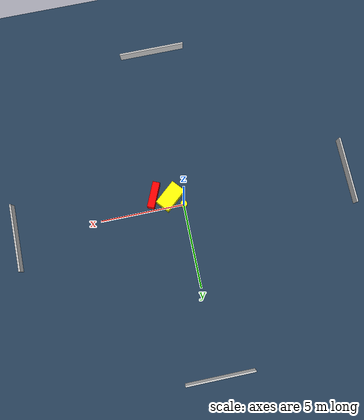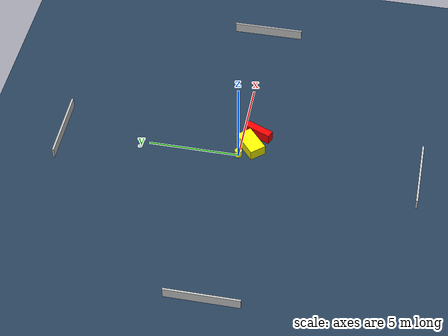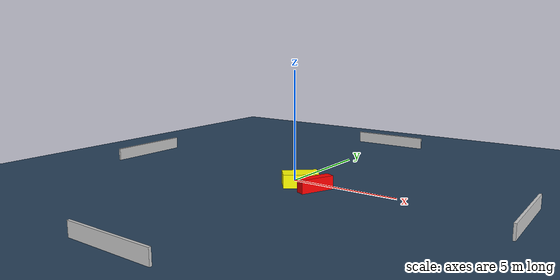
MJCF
<?xml version="1.0" ?>
<mujoco model="generated_environment">
  <option timestep="0.01" integrator="RK4" cone="elliptic"/>
  <default>
    <geom density="1"/>
  </default>
  <asset>
    <texture builtin="gradient" height="3072" name="skybox" rgb1="0.3 0.5 0.7" rgb2="0 0 0" type="skybox" width="512"/>
    <texture builtin="checker" height="300" name="groundplane" rgb1="0.2 0.3 0.4" rgb2="0.1 0.2 0.3" type="2d" width="300"/>
    <material name="groundplane" reflectance="0.2" texrepeat="5 5" texture="groundplane"/>
  </asset>
  <worldbody>
    <light dir="0 0 -1" directional="true" pos="0 0 1.5"/>
    <geom condim="3" friction="0.5 0.005 0.001" material="groundplane" name="floor" pos="0 0 0" size="0 0 0.05" type="plane"/>
    <body name="walls">
      <geom name="wall_1" condim="4" pos="-10.0 0.0 0.3" rgba="0.800000011920929 0.800000011920929 0.800000011920929 1.0" size="0.05 2.0 0.3" type="box"/>
      <geom name="wall_2" condim="4" pos="10.0 0.0 0.3" rgba="0.800000011920929 0.800000011920929 0.800000011920929 1.0" size="0.05 2.0 0.3" type="box"/>
      <geom name="wall_3" condim="4" pos="0.0 -10.0 0.3" rgba="0.800000011920929 0.800000011920929 0.800000011920929 1.0" size="2.0 0.05 0.3" type="box"/>
      <geom name="wall_4" condim="4" pos="0.0 10.0 0.3" rgba="0.800000011920929 0.800000011920929 0.800000011920929 1.0" size="2.0 0.05 0.3" type="box"/>
    </body>
    <body name="robot">
      <joint name="joint_x" type="slide" pos="0 0 0" axis="1 0 0"/>
      <joint name="joint_y" type="slide" pos="0 0 0" axis="0 1 0"/>
      <geom name="robot" type="cylinder" pos="0.0 0.0 0.2" size="0.2 0.2 0.0" mass="5.0" friction="1.0 0.005 0.0001" condim="4" rgba="1.0 1.0 0.0 1.0"/>
    </body>
    <body name="obstacle_1_movable">
      <geom name="obstacle_1_movable" condim="4" pos="0.6872079731768388 -0.5699827893423824 0.3" euler="0 0 130.68300171326615" friction="0.0 0.005 0.001" rgba="1.0 1.0 0.0 1.0" size="0.45877782461429306 0.7889857946195338 0.3" type="box" mass="0.1"/>
      <joint type="free"/>
    </body>
    <body name="obstacle_2_static">
      <geom name="obstacle_2_static" condim="4" pos="1.6486652641412665 -0.8548233923889851 0.3" euler="0 0 156.35276289405252" friction="0.0 0.005 0.001" rgba="1.0 0.0 0.0 1.0" size="0.21364503844475052 0.7776556995079147 0.3" type="box"/>
    </body>
  </worldbody>
  <actuator>
    <motor name="actuator_x" joint="joint_x" gear="1" ctrlrange="-1 1"/>
    <motor name="actuator_y" joint="joint_y" gear="1" ctrlrange="-1 1"/>
  </actuator>
</mujoco>
